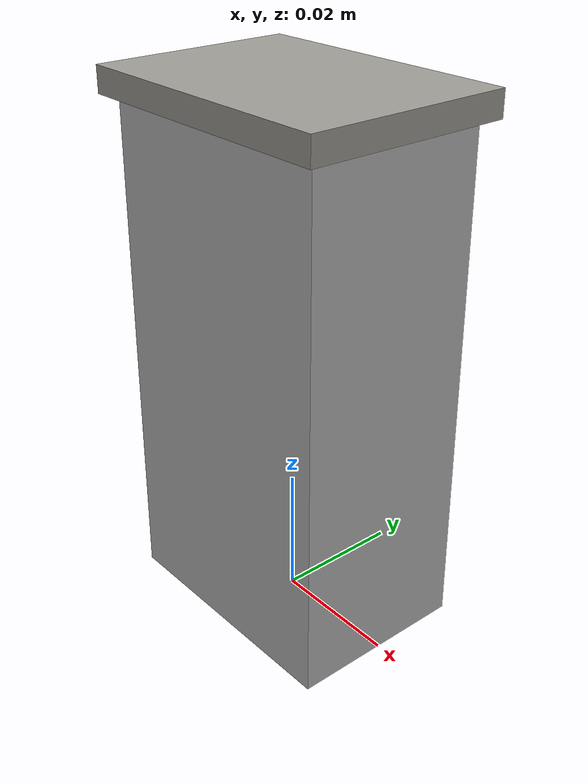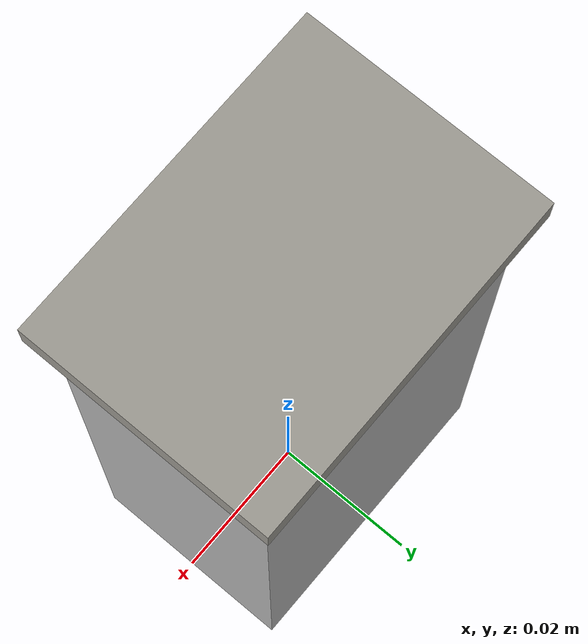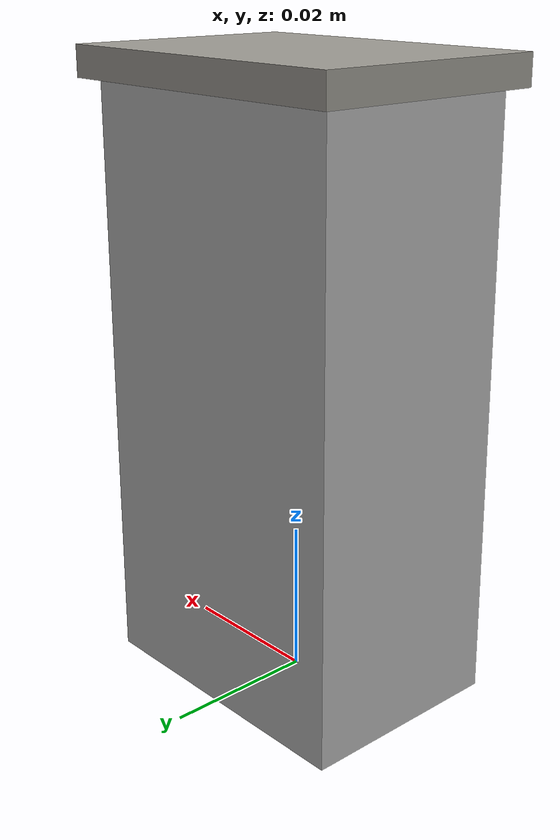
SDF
<?xml version="1.0"?>
<sdf version="1.7">
  <model name="bldg_11">
    <static>true</static>
    <link name="link">
<visual name="mass"><pose>0 0 0.0390 0 0 0</pose><geometry><box><size>0.0400 0.0280 0.0780</size></box></geometry><material><script><uri>model://bldg_11/materials/scripts</uri><uri>model://bldg_11/materials/textures</uri><name>Facade</name></script></material></visual>
      <collision name="mass_c_c"><pose>0 0 0.0390 0 0 0</pose><geometry><box><size>0.0400 0.0280 0.0780</size></box></geometry></collision>
      <visual name="roof"><pose>0 0 0.0800 0 0 0</pose><geometry><box><size>0.0440 0.0320 0.004</size></box></geometry><material><ambient>0.62 0.61 0.58 1</ambient><diffuse>0.62 0.61 0.58 1</diffuse></material></visual>
    </link>
  </model>
</sdf>
